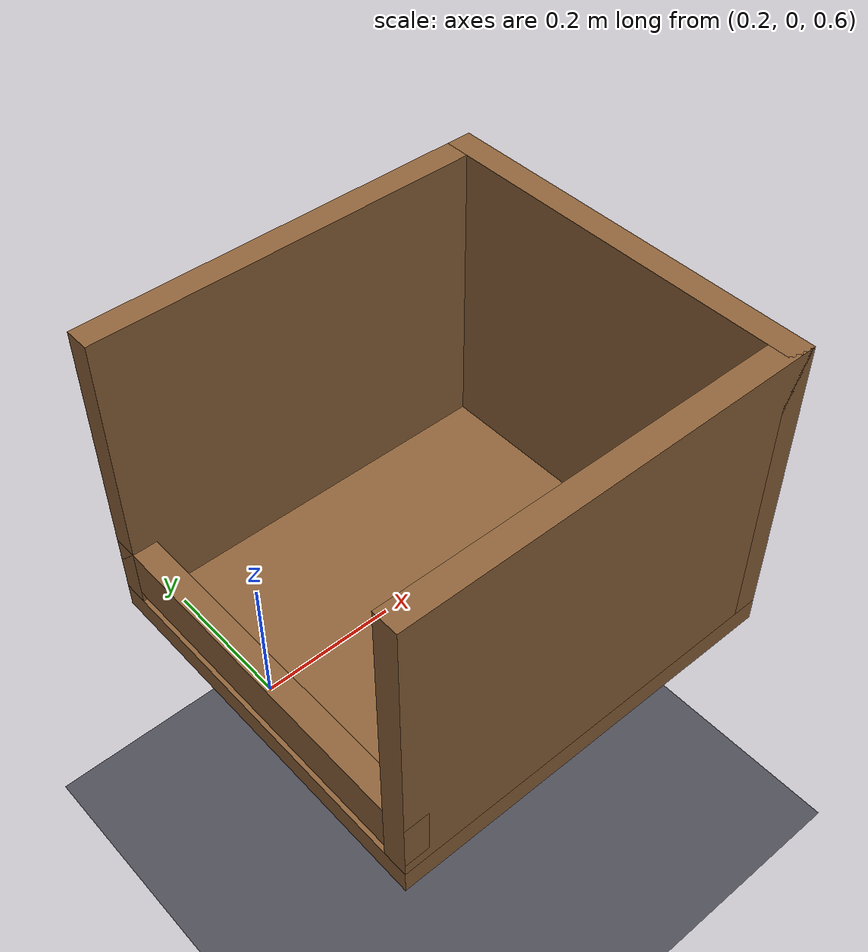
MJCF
<mujoco model="cabinet_cavity_v2">
  <compiler angle="radian" autolimits="true" boundmass="0" balanceinertia="true"/>
  <option impratio="10" gravity="0 0 -9.8" integrator="implicitfast" cone="elliptic" jacobian="sparse" noslip_iterations="4">
    <flag multiccd="enable" contact="enable" warmstart="enable"/>
  </option>
  <size njmax="5000" nconmax="5000"/>
  <visual>
    <global offwidth="1280" offheight="720"/>
    <map znear="0.001"/>
    <headlight ambient="0.45 0.45 0.45" diffuse="0.6 0.6 0.6"/>
  </visual>
  <default>
    <default class="cavity_struct">
      <geom contype="8" conaffinity="15" group="0" friction="0.9 0.9 0.001"
            solref="0.02 1" solimp="0.998 0.998 0.001" density="800" rgba="0.55 0.38 0.22 1"/>
    </default>
  </default>
  <worldbody>
    <light pos="0.5 0.5 3" dir="0 0 -1" diffuse="0.7 0.7 0.7"/>
    <geom name="floor" type="plane" size="5 5 0.1" pos="0 0 0" rgba="0.3 0.3 0.34 1"/>
    <body name="cabinet" pos="0.5 0 0.8">
      <geom name="cab_bottom" class="cavity_struct" type="box" pos="0 0 -0.26" size="0.33 0.31 0.02"/>
      <geom name="cab_back"   class="cavity_struct" type="box" pos="0.31 0 0"   size="0.02 0.31 0.24"/>
      <geom name="cab_left"   class="cavity_struct" type="box" pos="0 0.29 0"    size="0.33 0.02 0.24"/>
      <geom name="cab_right"  class="cavity_struct" type="box" pos="0 -0.29 0"   size="0.33 0.02 0.24"/>
      <geom name="cab_front"  class="cavity_struct" type="box" pos="-0.31 0 -0.18" size="0.02 0.31 0.04"/>
    </body>
  </worldbody>
</mujoco>
